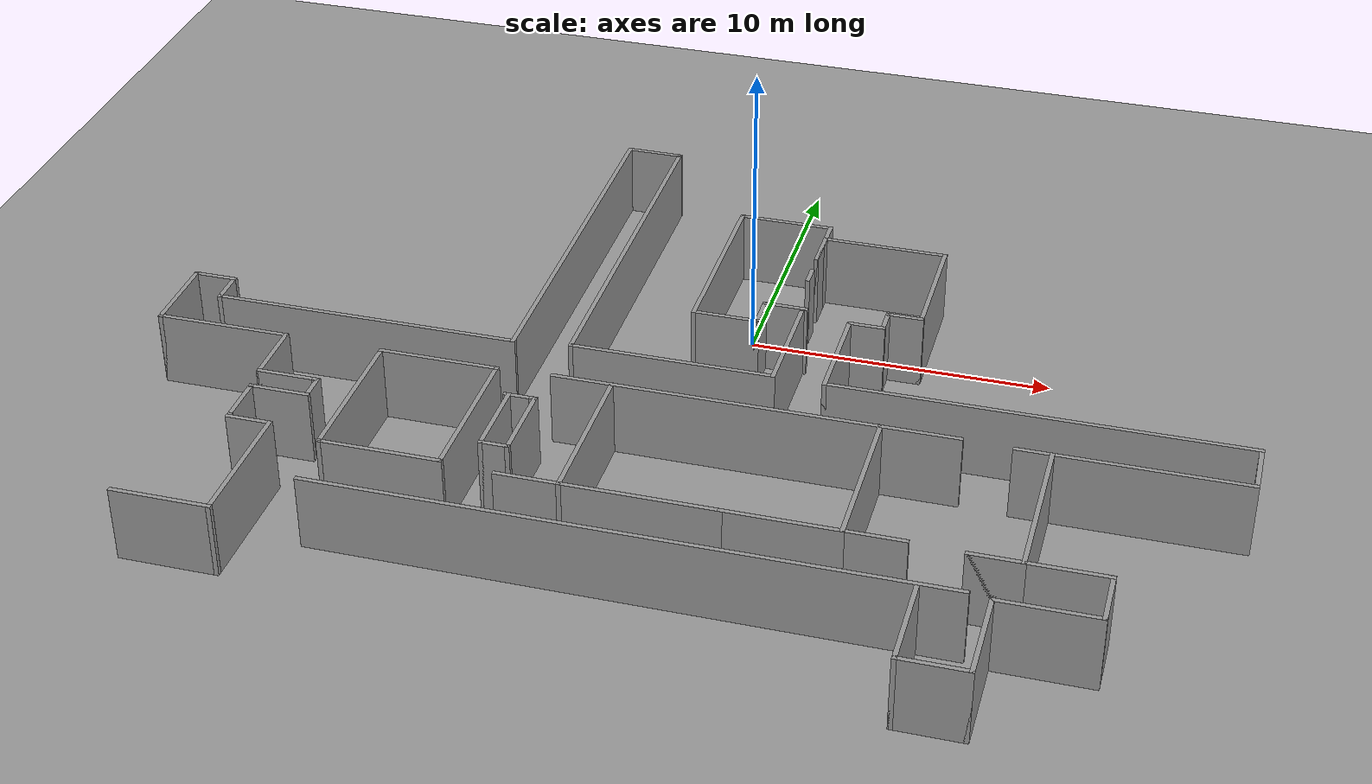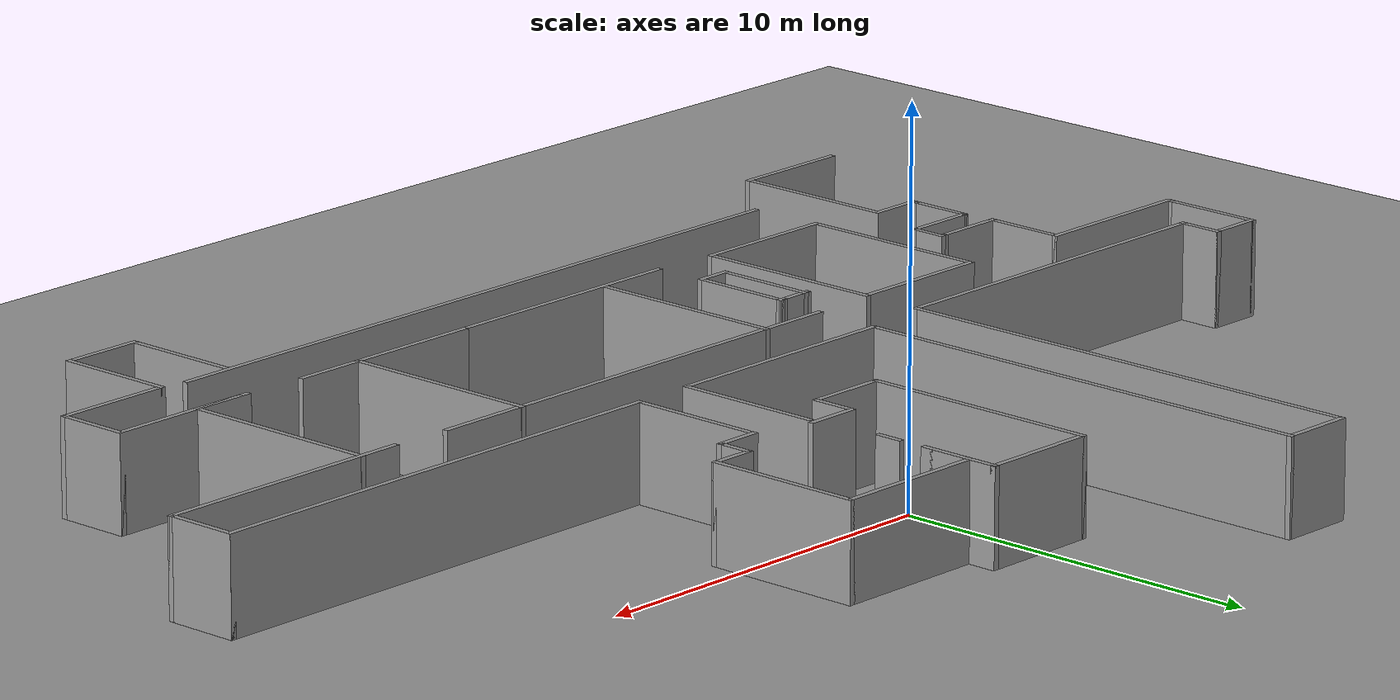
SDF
<sdf version="1.6">
 <world name="default">
  <light name="sun" type="directional">
   <pose>0 0 10 0 -0 0</pose>
   <diffuse>0.8 0.8 0.8 1</diffuse>
   <specular>0.2 0.2 0.2 1</specular>
   <attenuation>
    <range>1000</range>
    <constant>0.9</constant>
    <linear>0.01</linear>
    <quadratic>0.001</quadratic>
   </attenuation>
   <direction>0.5 0.1 -0.9</direction>
  </light>
  <scene><ambient>0.4 0.4 0.4 1</ambient><background>0.7 0.7 0.7 1</background><shadows>1</shadows></scene>
  <physics name="default_physics" default="0" type="ode">
   <max_step_size>0.01</max_step_size>
   <real_time_factor>1</real_time_factor>
   <real_time_update_rate>100</real_time_update_rate>
  </physics>
  <model name="ground_plane_0">
   <static>1</static>
   <link name="link">
    <collision name="collision">
     <geometry><plane><normal>0 0 1</normal><size>100 100</size></plane></geometry>
     <surface><friction><ode><mu>100</mu><mu2>50</mu2></ode></friction></surface>
    </collision>
    <visual name="visual">
     <cast_shadows>0</cast_shadows>
     <geometry><plane><normal>0 0 1</normal><size>100 100</size></plane></geometry>
     <material>
      <script><uri>file://media/materials/scripts/gazebo.material</uri><name>Gazebo/Grey</name></script>
     </material>
    </visual>
    <velocity_decay><linear>0</linear><angular>0</angular></velocity_decay>
   </link>
   <pose>0.497681 0 0 0 -0 0</pose>
  </model>
  <gravity>0 0 -9.8</gravity>
  <magnetic_field>6e-06 2.3e-05 -4.2e-05</magnetic_field>
  <atmosphere type="adiabatic"/>
  <spherical_coordinates>
   <surface_model>EARTH_WGS84</surface_model>
   <latitude_deg>0</latitude_deg>
   <longitude_deg>0</longitude_deg>
   <elevation>0</elevation>
   <heading_deg>0</heading_deg>
  </spherical_coordinates>
  <model name="Halligan_0">
   <pose>-0.504402 -4.89415 0 0 -0 0</pose>
   <link name="Wall_100">
    <collision name="Wall_100_Collision">
     <geometry><box><size>3.75 0.15 2.5</size></box></geometry>
     <pose>0 0 1.25 0 -0 0</pose>
    </collision>
    <visual name="Wall_100_Visual">
     <pose>0 0 1.25 0 -0 0</pose>
     <geometry><box><size>3.75 0.15 2.5</size></box></geometry>
     <material>
      <script><uri>file://media/materials/scripts/gazebo.material</uri><name>Gazebo/Grey</name></script>
      <ambient>1 1 1 1</ambient>
     </material>
     <meta><layer>0</layer></meta>
    </visual>
    <pose>4.42767 -7.46899 0 0 -0 3.14159</pose>
   </link>
   <link name="Wall_101">
    <collision name="Wall_101_Collision">
     <geometry><box><size>7 0.15 2.5</size></box></geometry>
     <pose>0 0 1.25 0 -0 0</pose>
    </collision>
    <visual name="Wall_101_Visual">
     <pose>0 0 1.25 0 -0 0</pose>
     <geometry><box><size>7 0.15 2.5</size></box></geometry>
     <material>
      <script><uri>file://media/materials/scripts/gazebo.material</uri><name>Gazebo/Grey</name></script>
      <ambient>1 1 1 1</ambient>
     </material>
     <meta><layer>0</layer></meta>
    </visual>
    <pose>-0.797325 -7.46899 0 0 -0 3.14159</pose>
   </link>
   <link name="Wall_103">
    <collision name="Wall_103_Collision">
     <geometry><box><size>5.5 0.15 2.5</size></box></geometry>
     <pose>0 0 1.25 0 -0 0</pose>
    </collision>
    <visual name="Wall_103_Visual">
     <pose>0 0 1.25 0 -0 0</pose>
     <geometry><box><size>5.5 0.15 2.5</size></box></geometry>
     <material>
      <script><uri>file://media/materials/scripts/gazebo.material</uri><name>Gazebo/Grey</name></script>
      <ambient>1 1 1 1</ambient>
     </material>
     <meta><layer>0</layer></meta>
    </visual>
    <pose>-2.25232 -4.79399 0 0 0 -1.5708</pose>
   </link>
   <link name="Wall_105">
    <collision name="Wall_105_Collision">
     <geometry><box><size>2 0.15 2.5</size></box></geometry>
     <pose>0 0 1.25 0 -0 0</pose>
    </collision>
    <visual name="Wall_105_Visual">
     <pose>0 0 1.25 0 -0 0</pose>
     <geometry><box><size>2 0.15 2.5</size></box></geometry>
     <material>
      <script><uri>file://media/materials/scripts/gazebo.material</uri><name>Gazebo/Grey</name></script>
      <ambient>1 1 1 1</ambient>
     </material>
     <meta><layer>0</layer></meta>
    </visual>
    <pose>7.15268 -7.46899 0 0 -0 0</pose>
   </link>
   <link name="Wall_107">
    <collision name="Wall_107_Collision">
     <geometry><box><size>5.5 0.15 2.5</size></box></geometry>
     <pose>0 0 1.25 0 -0 0</pose>
    </collision>
    <visual name="Wall_107_Visual">
     <pose>0 0 1.25 0 -0 0</pose>
     <geometry><box><size>5.5 0.15 2.5</size></box></geometry>
     <material>
      <script><uri>file://media/materials/scripts/gazebo.material</uri><name>Gazebo/Grey</name></script>
      <ambient>1 1 1 1</ambient>
     </material>
     <meta><layer>0</layer></meta>
    </visual>
    <pose>11.4477 -4.87399 0 0 0 -1.5708</pose>
   </link>
   <link name="Wall_108">
    <collision name="Wall_108_Collision">
     <geometry><box><size>1.75 0.15 2.5</size></box></geometry>
     <pose>0 0 1.25 0 -0 0</pose>
    </collision>
    <visual name="Wall_108_Visual">
     <pose>0 0 1.25 0 -0 0</pose>
     <geometry><box><size>1.75 0.15 2.5</size></box></geometry>
     <material>
      <script><uri>file://media/materials/scripts/gazebo.material</uri><name>Gazebo/Grey</name></script>
      <ambient>1 1 1 1</ambient>
     </material>
     <meta><layer>0</layer></meta>
    </visual>
    <pose>10.6477 -7.54899 0 0 -0 3.14159</pose>
   </link>
   <link name="Wall_109">
    <collision name="Wall_109_Collision">
     <geometry><box><size>4.25 0.15 2.5</size></box></geometry>
     <pose>0 0 1.25 0 -0 0</pose>
    </collision>
    <visual name="Wall_109_Visual">
     <pose>0 0 1.25 0 -0 0</pose>
     <geometry><box><size>4.25 0.15 2.5</size></box></geometry>
     <material>
      <script><uri>file://media/materials/scripts/gazebo.material</uri><name>Gazebo/Grey</name></script>
      <ambient>1 1 1 1</ambient>
     </material>
     <meta><layer>0</layer></meta>
    </visual>
    <pose>11.8977 -7.54899 0 0 -0 0</pose>
   </link>
   <link name="Wall_110">
    <collision name="Wall_110_Collision">
     <geometry><box><size>2 0.15 2.5</size></box></geometry>
     <pose>0 0 1.25 0 -0 0</pose>
    </collision>
    <visual name="Wall_110_Visual">
     <pose>0 0 1.25 0 -0 0</pose>
     <geometry><box><size>2 0.15 2.5</size></box></geometry>
     <material>
      <script><uri>file://media/materials/scripts/gazebo.material</uri><name>Gazebo/Grey</name></script>
      <ambient>1 1 1 1</ambient>
     </material>
     <meta><layer>0</layer></meta>
    </visual>
    <pose>13.9477 -8.47399 0 0 0 -1.5708</pose>
   </link>
   <link name="Wall_111">
    <collision name="Wall_111_Collision">
     <geometry><box><size>3.25 0.15 2.5</size></box></geometry>
     <pose>0 0 1.25 0 -0 0</pose>
    </collision>
    <visual name="Wall_111_Visual">
     <pose>0 0 1.25 0 -0 0</pose>
     <geometry><box><size>3.25 0.15 2.5</size></box></geometry>
     <material>
      <script><uri>file://media/materials/scripts/gazebo.material</uri><name>Gazebo/Grey</name></script>
      <ambient>1 1 1 1</ambient>
     </material>
     <meta><layer>0</layer></meta>
    </visual>
    <pose>12.3977 -9.39899 0 0 -0 3.14159</pose>
   </link>
   <link name="Wall_113">
    <collision name="Wall_113_Collision">
     <geometry><box><size>20 0.15 2.5</size></box></geometry>
     <pose>0 0 1.25 0 -0 0</pose>
    </collision>
    <visual name="Wall_113_Visual">
     <pose>0 0 1.25 0 -0 0</pose>
     <geometry><box><size>20 0.15 2.5</size></box></geometry>
     <material>
      <script><uri>file://media/materials/scripts/gazebo.material</uri><name>Gazebo/Grey</name></script>
      <ambient>1 1 1 1</ambient>
     </material>
     <meta><layer>0</layer></meta>
    </visual>
    <pose>0.202675 -9.25899 0 0 -0 3.14159</pose>
   </link>
   <link name="Wall_115">
    <collision name="Wall_115_Collision">
     <geometry><box><size>1.25 0.15 2.5</size></box></geometry>
     <pose>0 0 1.25 0 -0 0</pose>
    </collision>
    <visual name="Wall_115_Visual">
     <pose>0 0 1.25 0 -0 0</pose>
     <geometry><box><size>1.25 0.15 2.5</size></box></geometry>
     <material>
      <script><uri>file://media/materials/scripts/gazebo.material</uri><name>Gazebo/Grey</name></script>
      <ambient>1 1 1 1</ambient>
     </material>
     <meta><layer>0</layer></meta>
    </visual>
    <pose>1.19553 3.14698 0 0 -0 1.5708</pose>
   </link>
   <link name="Wall_116">
    <collision name="Wall_116_Collision">
     <geometry><box><size>1.5 0.15 2.5</size></box></geometry>
     <pose>0 0 1.25 0 -0 0</pose>
    </collision>
    <visual name="Wall_116_Visual">
     <pose>0 0 1.25 0 -0 0</pose>
     <geometry><box><size>1.5 0.15 2.5</size></box></geometry>
     <material>
      <script><uri>file://media/materials/scripts/gazebo.material</uri><name>Gazebo/Grey</name></script>
      <ambient>1 1 1 1</ambient>
     </material>
     <meta><layer>0</layer></meta>
    </visual>
    <pose>1.87053 3.69698 0 0 -0 0</pose>
   </link>
   <link name="Wall_118">
    <collision name="Wall_118_Collision">
     <geometry><box><size>0.25 0.15 2.5</size></box></geometry>
     <pose>0 0 1.25 0 -0 0</pose>
    </collision>
    <visual name="Wall_118_Visual">
     <pose>0 0 1.25 0 -0 0</pose>
     <geometry><box><size>0.25 0.15 2.5</size></box></geometry>
     <material>
      <script><uri>file://media/materials/scripts/gazebo.material</uri><name>Gazebo/Grey</name></script>
      <ambient>1 1 1 1</ambient>
     </material>
     <meta><layer>0</layer></meta>
    </visual>
    <pose>-12.9955 -6.80101 0 0 0 -1.5708</pose>
   </link>
   <link name="Wall_119">
    <collision name="Wall_119_Collision">
     <geometry><box><size>1.5 0.15 2.5</size></box></geometry>
     <pose>0 0 1.25 0 -0 0</pose>
    </collision>
    <visual name="Wall_119_Visual">
     <pose>0 0 1.25 0 -0 0</pose>
     <geometry><box><size>1.5 0.15 2.5</size></box></geometry>
     <material>
      <script><uri>file://media/materials/scripts/gazebo.material</uri><name>Gazebo/Grey</name></script>
      <ambient>1 1 1 1</ambient>
     </material>
     <meta><layer>0</layer></meta>
    </visual>
    <pose>-12.3205 -6.85101 0 0 -0 0</pose>
   </link>
   <link name="Wall_120">
    <collision name="Wall_120_Collision">
     <geometry><box><size>4.5 0.15 2.5</size></box></geometry>
     <pose>0 0 1.25 0 -0 0</pose>
    </collision>
    <visual name="Wall_120_Visual">
     <pose>0 0 1.25 0 -0 0</pose>
     <geometry><box><size>4.5 0.15 2.5</size></box></geometry>
     <material>
      <script><uri>file://media/materials/scripts/gazebo.material</uri><name>Gazebo/Grey</name></script>
      <ambient>1 1 1 1</ambient>
     </material>
     <meta><layer>0</layer></meta>
    </visual>
    <pose>-11.6455 -9.02601 0 0 0 -1.5708</pose>
   </link>
   <link name="Wall_121">
    <collision name="Wall_121_Collision">
     <geometry><box><size>3.25 0.15 2.5</size></box></geometry>
     <pose>0 0 1.25 0 -0 0</pose>
    </collision>
    <visual name="Wall_121_Visual">
     <pose>0 0 1.25 0 -0 0</pose>
     <geometry><box><size>3.25 0.15 2.5</size></box></geometry>
     <material>
      <script><uri>file://media/materials/scripts/gazebo.material</uri><name>Gazebo/Grey</name></script>
      <ambient>1 1 1 1</ambient>
     </material>
     <meta><layer>0</layer></meta>
    </visual>
    <pose>-13.1955 -11.201 0 0 -0 3.14159</pose>
   </link>
   <link name="Wall_123">
    <collision name="Wall_123_Collision">
     <geometry><box><size>3.25 0.15 2.5</size></box></geometry>
     <pose>0 0 1.25 0 -0 0</pose>
    </collision>
    <visual name="Wall_123_Visual">
     <pose>0 0 1.25 0 -0 0</pose>
     <geometry><box><size>3.25 0.15 2.5</size></box></geometry>
     <material>
      <script><uri>file://media/materials/scripts/gazebo.material</uri><name>Gazebo/Grey</name></script>
      <ambient>1 1 1 1</ambient>
     </material>
     <meta><layer>0</layer></meta>
    </visual>
    <pose>10.8477 -10.949 0 0 0 -1.5708</pose>
   </link>
   <link name="Wall_124">
    <collision name="Wall_124_Collision">
     <geometry><box><size>2.25 0.15 2.5</size></box></geometry>
     <pose>0 0 1.25 0 -0 0</pose>
    </collision>
    <visual name="Wall_124_Visual">
     <pose>0 0 1.25 0 -0 0</pose>
     <geometry><box><size>2.25 0.15 2.5</size></box></geometry>
     <material>
      <script><uri>file://media/materials/scripts/gazebo.material</uri><name>Gazebo/Grey</name></script>
      <ambient>1 1 1 1</ambient>
     </material>
     <meta><layer>0</layer></meta>
    </visual>
    <pose>9.79767 -12.499 0 0 -0 3.14159</pose>
   </link>
   <link name="Wall_125">
    <collision name="Wall_125_Collision">
     <geometry><box><size>3.25 0.15 2.5</size></box></geometry>
     <pose>0 0 1.25 0 -0 0</pose>
    </collision>
    <visual name="Wall_125_Visual">
     <pose>0 0 1.25 0 -0 0</pose>
     <geometry><box><size>3.25 0.15 2.5</size></box></geometry>
     <material>
      <script><uri>file://media/materials/scripts/gazebo.material</uri><name>Gazebo/Grey</name></script>
      <ambient>1 1 1 1</ambient>
     </material>
     <meta><layer>0</layer></meta>
    </visual>
    <pose>8.74767 -10.949 0 0 -0 1.5708</pose>
   </link>
   <link name="Wall_127">
    <collision name="Wall_127_Collision">
     <geometry><box><size>0.75 0.15 2.5</size></box></geometry>
     <pose>0 0 1.25 0 -0 0</pose>
    </collision>
    <visual name="Wall_127_Visual">
     <pose>0 0 1.25 0 -0 0</pose>
     <geometry><box><size>0.75 0.15 2.5</size></box></geometry>
     <material>
      <script><uri>file://media/materials/scripts/gazebo.material</uri><name>Gazebo/Grey</name></script>
      <ambient>1 1 1 1</ambient>
     </material>
     <meta><layer>0</layer></meta>
    </visual>
    <pose>2.21436 5.77412 0 0 -0 1.5708</pose>
   </link>
   <link name="Wall_49">
    <collision name="Wall_49_Collision">
     <geometry><box><size>2.25 0.15 2.5</size></box></geometry>
     <pose>0 0 1.25 0 -0 0</pose>
    </collision>
    <visual name="Wall_49_Visual">
     <pose>0 0 1.25 0 -0 0</pose>
     <geometry><box><size>2.25 0.15 2.5</size></box></geometry>
     <material>
      <script><uri>file://media/materials/scripts/gazebo.material</uri><name>Gazebo/Grey</name></script>
      <ambient>1 1 1 1</ambient>
     </material>
     <meta><layer>0</layer></meta>
    </visual>
    <pose>0.14553 2.59698 0 0 -0 3.14159</pose>
   </link>
   <link name="Wall_50">
    <collision name="Wall_50_Collision">
     <geometry><box><size>6.5 0.15 2.5</size></box></geometry>
     <pose>0 0 1.25 0 -0 0</pose>
    </collision>
    <visual name="Wall_50_Visual">
     <pose>0 0 1.25 0 -0 0</pose>
     <geometry><box><size>6.5 0.15 2.5</size></box></geometry>
     <material>
      <script><uri>file://media/materials/scripts/gazebo.material</uri><name>Gazebo/Grey</name></script>
      <ambient>1 1 1 1</ambient>
     </material>
     <meta><layer>0</layer></meta>
    </visual>
    <pose>-0.90447 5.77198 0 0 -0 1.5708</pose>
   </link>
   <link name="Wall_51">
    <collision name="Wall_51_Collision">
     <geometry><box><size>3.25 0.15 2.5</size></box></geometry>
     <pose>0 0 1.25 0 -0 0</pose>
    </collision>
    <visual name="Wall_51_Visual">
     <pose>0 0 1.25 0 -0 0</pose>
     <geometry><box><size>3.25 0.15 2.5</size></box></geometry>
     <material>
      <script><uri>file://media/materials/scripts/gazebo.material</uri><name>Gazebo/Grey</name></script>
      <ambient>1 1 1 1</ambient>
     </material>
     <meta><layer>0</layer></meta>
    </visual>
    <pose>0.64553 8.94698 0 0 -0 0</pose>
   </link>
   <link name="Wall_52">
    <collision name="Wall_52_Collision">
     <geometry><box><size>2.25 0.15 2.5</size></box></geometry>
     <pose>0 0 1.25 0 -0 0</pose>
    </collision>
    <visual name="Wall_52_Visual">
     <pose>0 0 1.25 0 -0 0</pose>
     <geometry><box><size>2.25 0.15 2.5</size></box></geometry>
     <material>
      <script><uri>file://media/materials/scripts/gazebo.material</uri><name>Gazebo/Grey</name></script>
      <ambient>1 1 1 1</ambient>
     </material>
     <meta><layer>0</layer></meta>
    </visual>
    <pose>2.19553 7.89698 0 0 0 -1.5708</pose>
   </link>
   <link name="Wall_53">
    <collision name="Wall_53_Collision">
     <geometry><box><size>1.5 0.15 2.5</size></box></geometry>
     <pose>0 0 1.25 0 -0 0</pose>
    </collision>
    <visual name="Wall_53_Visual">
     <pose>0 0 1.25 0 -0 0</pose>
     <geometry><box><size>1.5 0.15 2.5</size></box></geometry>
     <material>
      <script><uri>file://media/materials/scripts/gazebo.material</uri><name>Gazebo/Grey</name></script>
      <ambient>1 1 1 1</ambient>
     </material>
     <meta><layer>0</layer></meta>
    </visual>
    <pose>2.19553 7.52198 0 0 -0 1.5708</pose>
   </link>
   <link name="Wall_54">
    <collision name="Wall_54_Collision">
     <geometry><box><size>4.25 0.15 2.5</size></box></geometry>
     <pose>0 0 1.25 0 -0 0</pose>
    </collision>
    <visual name="Wall_54_Visual">
     <pose>0 0 1.25 0 -0 0</pose>
     <geometry><box><size>4.25 0.15 2.5</size></box></geometry>
     <material>
      <script><uri>file://media/materials/scripts/gazebo.material</uri><name>Gazebo/Grey</name></script>
      <ambient>1 1 1 1</ambient>
     </material>
     <meta><layer>0</layer></meta>
    </visual>
    <pose>4.24553 8.19698 0 0 -0 0</pose>
   </link>
   <link name="Wall_55">
    <collision name="Wall_55_Collision">
     <geometry><box><size>4.25 0.15 2.5</size></box></geometry>
     <pose>0 0 1.25 0 -0 0</pose>
    </collision>
    <visual name="Wall_55_Visual">
     <pose>0 0 1.25 0 -0 0</pose>
     <geometry><box><size>4.25 0.15 2.5</size></box></geometry>
     <material>
      <script><uri>file://media/materials/scripts/gazebo.material</uri><name>Gazebo/Grey</name></script>
      <ambient>1 1 1 1</ambient>
     </material>
     <meta><layer>0</layer></meta>
    </visual>
    <pose>6.29553 6.14698 0 0 0 -1.5708</pose>
   </link>
   <link name="Wall_56">
    <collision name="Wall_56_Collision">
     <geometry><box><size>1.25 0.15 2.5</size></box></geometry>
     <pose>0 0 1.25 0 -0 0</pose>
    </collision>
    <visual name="Wall_56_Visual">
     <pose>0 0 1.25 0 -0 0</pose>
     <geometry><box><size>1.25 0.15 2.5</size></box></geometry>
     <material>
      <script><uri>file://media/materials/scripts/gazebo.material</uri><name>Gazebo/Grey</name></script>
      <ambient>1 1 1 1</ambient>
     </material>
     <meta><layer>0</layer></meta>
    </visual>
    <pose>5.74553 4.09698 0 0 -0 3.14159</pose>
   </link>
   <link name="Wall_57">
    <collision name="Wall_57_Collision">
     <geometry><box><size>1 0.15 2.5</size></box></geometry>
     <pose>0 0 1.25 0 -0 0</pose>
    </collision>
    <visual name="Wall_57_Visual">
     <pose>0 0 1.25 0 -0 0</pose>
     <geometry><box><size>1 0.15 2.5</size></box></geometry>
     <material>
      <script><uri>file://media/materials/scripts/gazebo.material</uri><name>Gazebo/Grey</name></script>
      <ambient>1 1 1 1</ambient>
     </material>
     <meta><layer>0</layer></meta>
    </visual>
    <pose>5.19553 3.67198 0 0 0 -1.5708</pose>
   </link>
   <link name="Wall_58">
    <collision name="Wall_58_Collision">
     <geometry><box><size>1.25 0.15 2.5</size></box></geometry>
     <pose>0 0 1.25 0 -0 0</pose>
    </collision>
    <visual name="Wall_58_Visual">
     <pose>0 0 1.25 0 -0 0</pose>
     <geometry><box><size>1.25 0.15 2.5</size></box></geometry>
     <material>
      <script><uri>file://media/materials/scripts/gazebo.material</uri><name>Gazebo/Grey</name></script>
      <ambient>1 1 1 1</ambient>
     </material>
     <meta><layer>0</layer></meta>
    </visual>
    <pose>4.64553 3.24698 0 0 -0 3.14159</pose>
   </link>
   <link name="Wall_59">
    <collision name="Wall_59_Collision">
     <geometry><box><size>3.75 0.15 2.5</size></box></geometry>
     <pose>0 0 1.25 0 -0 0</pose>
    </collision>
    <visual name="Wall_59_Visual">
     <pose>0 0 1.25 0 -0 0</pose>
     <geometry><box><size>3.75 0.15 2.5</size></box></geometry>
     <material>
      <script><uri>file://media/materials/scripts/gazebo.material</uri><name>Gazebo/Grey</name></script>
      <ambient>1 1 1 1</ambient>
     </material>
     <meta><layer>0</layer></meta>
    </visual>
    <pose>4.09553 1.44698 0 0 0 -1.5708</pose>
   </link>
   <link name="Wall_60">
    <collision name="Wall_60_Collision">
     <geometry><box><size>13.5 0.15 2.5</size></box></geometry>
     <pose>0 0 1.25 0 -0 0</pose>
    </collision>
    <visual name="Wall_60_Visual">
     <pose>0 0 1.25 0 -0 0</pose>
     <geometry><box><size>13.5 0.15 2.5</size></box></geometry>
     <material>
      <script><uri>file://media/materials/scripts/gazebo.material</uri><name>Gazebo/Grey</name></script>
      <ambient>1 1 1 1</ambient>
     </material>
     <meta><layer>0</layer></meta>
    </visual>
    <pose>10.7705 -0.353021 0 0 -0 0</pose>
   </link>
   <link name="Wall_61">
    <collision name="Wall_61_Collision">
     <geometry><box><size>2 0.15 2.5</size></box></geometry>
     <pose>0 0 1.25 0 -0 0</pose>
    </collision>
    <visual name="Wall_61_Visual">
     <pose>0 0 1.25 0 -0 0</pose>
     <geometry><box><size>2 0.15 2.5</size></box></geometry>
     <material>
      <script><uri>file://media/materials/scripts/gazebo.material</uri><name>Gazebo/Grey</name></script>
      <ambient>1 1 1 1</ambient>
     </material>
     <meta><layer>0</layer></meta>
    </visual>
    <pose>17.4455 -1.27802 0 0 0 -1.5708</pose>
   </link>
   <link name="Wall_62">
    <collision name="Wall_62_Collision">
     <geometry><box><size>7.25 0.15 2.5</size></box></geometry>
     <pose>0 0 1.25 0 -0 0</pose>
    </collision>
    <visual name="Wall_62_Visual">
     <pose>0 0 1.25 0 -0 0</pose>
     <geometry><box><size>7.25 0.15 2.5</size></box></geometry>
     <material>
      <script><uri>file://media/materials/scripts/gazebo.material</uri><name>Gazebo/Grey</name></script>
      <ambient>1 1 1 1</ambient>
     </material>
     <meta><layer>0</layer></meta>
    </visual>
    <pose>13.8955 -2.20302 0 0 -0 3.14159</pose>
   </link>
   <link name="Wall_64">
    <collision name="Wall_64_Collision">
     <geometry><box><size>13 0.15 2.5</size></box></geometry>
     <pose>0 0 1.25 0 -0 0</pose>
    </collision>
    <visual name="Wall_64_Visual">
     <pose>0 0 1.25 0 -0 0</pose>
     <geometry><box><size>13 0.15 2.5</size></box></geometry>
     <material>
      <script><uri>file://media/materials/scripts/gazebo.material</uri><name>Gazebo/Grey</name></script>
      <ambient>1 1 1 1</ambient>
     </material>
     <meta><layer>0</layer></meta>
    </visual>
    <pose>2.25963 -2.13105 0 0 -0 3.14159</pose>
   </link>
   <link name="Wall_67">
    <collision name="Wall_67_Collision">
     <geometry><box><size>4 0.15 2.5</size></box></geometry>
     <pose>0 0 1.25 0 -0 0</pose>
    </collision>
    <visual name="Wall_67_Visual">
     <pose>0 0 1.25 0 -0 0</pose>
     <geometry><box><size>4 0.15 2.5</size></box></geometry>
     <material>
      <script><uri>file://media/materials/scripts/gazebo.material</uri><name>Gazebo/Grey</name></script>
      <ambient>1 1 1 1</ambient>
     </material>
     <meta><layer>0</layer></meta>
    </visual>
    <pose>2.45447 1.57399 0 0 -0 1.5708</pose>
   </link>
   <link name="Wall_69">
    <collision name="Wall_69_Collision">
     <geometry><box><size>6.75 0.15 2.5</size></box></geometry>
     <pose>0 0 1.25 0 -0 0</pose>
    </collision>
    <visual name="Wall_69_Visual">
     <pose>0 0 1.25 0 -0 0</pose>
     <geometry><box><size>6.75 0.15 2.5</size></box></geometry>
     <material>
      <script><uri>file://media/materials/scripts/gazebo.material</uri><name>Gazebo/Grey</name></script>
      <ambient>1 1 1 1</ambient>
     </material>
     <meta><layer>0</layer></meta>
    </visual>
    <pose>-0.845529 -0.351007 0 0 -0 3.14159</pose>
   </link>
   <link name="Wall_70">
    <collision name="Wall_70_Collision">
     <geometry><box><size>13 0.15 2.5</size></box></geometry>
     <pose>0 0 1.25 0 -0 0</pose>
    </collision>
    <visual name="Wall_70_Visual">
     <pose>0 0 1.25 0 -0 0</pose>
     <geometry><box><size>13 0.15 2.5</size></box></geometry>
     <material>
      <script><uri>file://media/materials/scripts/gazebo.material</uri><name>Gazebo/Grey</name></script>
      <ambient>1 1 1 1</ambient>
     </material>
     <meta><layer>0</layer></meta>
    </visual>
    <pose>-4.14553 6.07399 0 0 -0 1.5708</pose>
   </link>
   <link name="Wall_71">
    <collision name="Wall_71_Collision">
     <geometry><box><size>2 0.15 2.5</size></box></geometry>
     <pose>0 0 1.25 0 -0 0</pose>
    </collision>
    <visual name="Wall_71_Visual">
     <pose>0 0 1.25 0 -0 0</pose>
     <geometry><box><size>2 0.15 2.5</size></box></geometry>
     <material>
      <script><uri>file://media/materials/scripts/gazebo.material</uri><name>Gazebo/Grey</name></script>
      <ambient>1 1 1 1</ambient>
     </material>
     <meta><layer>0</layer></meta>
    </visual>
    <pose>-5.07053 12.499 0 0 -0 3.14159</pose>
   </link>
   <link name="Wall_72">
    <collision name="Wall_72_Collision">
     <geometry><box><size>13.25 0.15 2.5</size></box></geometry>
     <pose>0 0 1.25 0 -0 0</pose>
    </collision>
    <visual name="Wall_72_Visual">
     <pose>0 0 1.25 0 -0 0</pose>
     <geometry><box><size>13.25 0.15 2.5</size></box></geometry>
     <material>
      <script><uri>file://media/materials/scripts/gazebo.material</uri><name>Gazebo/Grey</name></script>
      <ambient>1 1 1 1</ambient>
     </material>
     <meta><layer>0</layer></meta>
    </visual>
    <pose>-5.99553 5.94899 0 0 0 -1.5708</pose>
   </link>
   <link name="Wall_73">
    <collision name="Wall_73_Collision">
     <geometry><box><size>10.25 0.15 2.5</size></box></geometry>
     <pose>0 0 1.25 0 -0 0</pose>
    </collision>
    <visual name="Wall_73_Visual">
     <pose>0 0 1.25 0 -0 0</pose>
     <geometry><box><size>10.25 0.15 2.5</size></box></geometry>
     <material>
      <script><uri>file://media/materials/scripts/gazebo.material</uri><name>Gazebo/Grey</name></script>
      <ambient>1 1 1 1</ambient>
     </material>
     <meta><layer>0</layer></meta>
    </visual>
    <pose>-11.0455 -0.601007 0 0 -0 3.14159</pose>
   </link>
   <link name="Wall_76">
    <collision name="Wall_76_Collision">
     <geometry><box><size>1.25 0.15 2.5</size></box></geometry>
     <pose>0 0 1.25 0 -0 0</pose>
    </collision>
    <visual name="Wall_76_Visual">
     <pose>0 0 1.25 0 -0 0</pose>
     <geometry><box><size>1.25 0.15 2.5</size></box></geometry>
     <material>
      <script><uri>file://media/materials/scripts/gazebo.material</uri><name>Gazebo/Grey</name></script>
      <ambient>1 1 1 1</ambient>
     </material>
     <meta><layer>0</layer></meta>
    </visual>
    <pose>-16.0955 -0.051006 0 0 -0 1.5708</pose>
   </link>
   <link name="Wall_77">
    <collision name="Wall_77_Collision">
     <geometry><box><size>1.5 0.15 2.5</size></box></geometry>
     <pose>0 0 1.25 0 -0 0</pose>
    </collision>
    <visual name="Wall_77_Visual">
     <pose>0 0 1.25 0 -0 0</pose>
     <geometry><box><size>1.5 0.15 2.5</size></box></geometry>
     <material>
      <script><uri>file://media/materials/scripts/gazebo.material</uri><name>Gazebo/Grey</name></script>
      <ambient>1 1 1 1</ambient>
     </material>
     <meta><layer>0</layer></meta>
    </visual>
    <pose>-16.7705 0.498993 0 0 -0 3.14159</pose>
   </link>
   <link name="Wall_78">
    <collision name="Wall_78_Collision">
     <geometry><box><size>2.75 0.15 2.5</size></box></geometry>
     <pose>0 0 1.25 0 -0 0</pose>
    </collision>
    <visual name="Wall_78_Visual">
     <pose>0 0 1.25 0 -0 0</pose>
     <geometry><box><size>2.75 0.15 2.5</size></box></geometry>
     <material>
      <script><uri>file://media/materials/scripts/gazebo.material</uri><name>Gazebo/Grey</name></script>
      <ambient>1 1 1 1</ambient>
     </material>
     <meta><layer>0</layer></meta>
    </visual>
    <pose>-17.4455 -0.801006 0 0 0 -1.5708</pose>
   </link>
   <link name="Wall_79">
    <collision name="Wall_79_Collision">
     <geometry><box><size>0.25 0.15 2.5</size></box></geometry>
     <pose>0 0 1.25 0 -0 0</pose>
    </collision>
    <visual name="Wall_79_Visual">
     <pose>0 0 1.25 0 -0 0</pose>
     <geometry><box><size>0.25 0.15 2.5</size></box></geometry>
     <material>
      <script><uri>file://media/materials/scripts/gazebo.material</uri><name>Gazebo/Grey</name></script>
      <ambient>1 1 1 1</ambient>
     </material>
     <meta><layer>0</layer></meta>
    </visual>
    <pose>-17.4455 -2.15101 0 0 0 -1.5708</pose>
   </link>
   <link name="Wall_80">
    <collision name="Wall_80_Collision">
     <geometry><box><size>4.5 0.15 2.5</size></box></geometry>
     <pose>0 0 1.25 0 -0 0</pose>
    </collision>
    <visual name="Wall_80_Visual">
     <pose>0 0 1.25 0 -0 0</pose>
     <geometry><box><size>4.5 0.15 2.5</size></box></geometry>
     <material>
      <script><uri>file://media/materials/scripts/gazebo.material</uri><name>Gazebo/Grey</name></script>
      <ambient>1 1 1 1</ambient>
     </material>
     <meta><layer>0</layer></meta>
    </visual>
    <pose>-15.2705 -2.20101 0 0 -0 0</pose>
   </link>
   <link name="Wall_81">
    <collision name="Wall_81_Collision">
     <geometry><box><size>2.25 0.15 2.5</size></box></geometry>
     <pose>0 0 1.25 0 -0 0</pose>
    </collision>
    <visual name="Wall_81_Visual">
     <pose>0 0 1.25 0 -0 0</pose>
     <geometry><box><size>2.25 0.15 2.5</size></box></geometry>
     <material>
      <script><uri>file://media/materials/scripts/gazebo.material</uri><name>Gazebo/Grey</name></script>
      <ambient>1 1 1 1</ambient>
     </material>
     <meta><layer>0</layer></meta>
    </visual>
    <pose>-13.0955 -3.25101 0 0 0 -1.5708</pose>
   </link>
   <link name="Wall_82">
    <collision name="Wall_82_Collision">
     <geometry><box><size>2 0.15 2.5</size></box></geometry>
     <pose>0 0 1.25 0 -0 0</pose>
    </collision>
    <visual name="Wall_82_Visual">
     <pose>0 0 1.25 0 -0 0</pose>
     <geometry><box><size>2 0.15 2.5</size></box></geometry>
     <material>
      <script><uri>file://media/materials/scripts/gazebo.material</uri><name>Gazebo/Grey</name></script>
      <ambient>1 1 1 1</ambient>
     </material>
     <meta><layer>0</layer></meta>
    </visual>
    <pose>-12.1705 -4.30101 0 0 -0 0</pose>
   </link>
   <link name="Wall_83">
    <collision name="Wall_83_Collision">
     <geometry><box><size>0.25 0.15 2.5</size></box></geometry>
     <pose>0 0 1.25 0 -0 0</pose>
    </collision>
    <visual name="Wall_83_Visual">
     <pose>0 0 1.25 0 -0 0</pose>
     <geometry><box><size>0.25 0.15 2.5</size></box></geometry>
     <material>
      <script><uri>file://media/materials/scripts/gazebo.material</uri><name>Gazebo/Grey</name></script>
      <ambient>1 1 1 1</ambient>
     </material>
     <meta><layer>0</layer></meta>
    </visual>
    <pose>-11.1955 -4.30101 0 0 -0 0</pose>
   </link>
   <link name="Wall_84">
    <collision name="Wall_84_Collision">
     <geometry><box><size>1 0.15 2.5</size></box></geometry>
     <pose>0 0 1.25 0 -0 0</pose>
    </collision>
    <visual name="Wall_84_Visual">
     <pose>0 0 1.25 0 -0 0</pose>
     <geometry><box><size>1 0.15 2.5</size></box></geometry>
     <material>
      <script><uri>file://media/materials/scripts/gazebo.material</uri><name>Gazebo/Grey</name></script>
      <ambient>1 1 1 1</ambient>
     </material>
     <meta><layer>0</layer></meta>
    </visual>
    <pose>-11.1455 -4.72601 0 0 0 -1.5708</pose>
   </link>
   <link name="Wall_85">
    <collision name="Wall_85_Collision">
     <geometry><box><size>2 0.15 2.5</size></box></geometry>
     <pose>0 0 1.25 0 -0 0</pose>
    </collision>
    <visual name="Wall_85_Visual">
     <pose>0 0 1.25 0 -0 0</pose>
     <geometry><box><size>2 0.15 2.5</size></box></geometry>
     <material>
      <script><uri>file://media/materials/scripts/gazebo.material</uri><name>Gazebo/Grey</name></script>
      <ambient>1 1 1 1</ambient>
     </material>
     <meta><layer>0</layer></meta>
    </visual>
    <pose>-12.0705 -5.15101 0 0 -0 3.14159</pose>
   </link>
   <link name="Wall_86">
    <collision name="Wall_86_Collision">
     <geometry><box><size>1.75 0.15 2.5</size></box></geometry>
     <pose>0 0 1.25 0 -0 0</pose>
    </collision>
    <visual name="Wall_86_Visual">
     <pose>0 0 1.25 0 -0 0</pose>
     <geometry><box><size>1.75 0.15 2.5</size></box></geometry>
     <material>
      <script><uri>file://media/materials/scripts/gazebo.material</uri><name>Gazebo/Grey</name></script>
      <ambient>1 1 1 1</ambient>
     </material>
     <meta><layer>0</layer></meta>
    </visual>
    <pose>-12.9955 -5.95101 0 0 0 -1.5708</pose>
   </link>
   <link name="Wall_88">
    <collision name="Wall_88_Collision">
     <geometry><box><size>5.25 0.15 2.5</size></box></geometry>
     <pose>0 0 1.25 0 -0 0</pose>
    </collision>
    <visual name="Wall_88_Visual">
     <pose>0 0 1.25 0 -0 0</pose>
     <geometry><box><size>5.25 0.15 2.5</size></box></geometry>
     <material>
      <script><uri>file://media/materials/scripts/gazebo.material</uri><name>Gazebo/Grey</name></script>
      <ambient>1 1 1 1</ambient>
     </material>
     <meta><layer>0</layer></meta>
    </visual>
    <pose>-5.99338 -4.77459 0 0 0 -1.5708</pose>
   </link>
   <link name="Wall_89">
    <collision name="Wall_89_Collision">
     <geometry><box><size>4 0.15 2.5</size></box></geometry>
     <pose>0 0 1.25 0 -0 0</pose>
    </collision>
    <visual name="Wall_89_Visual">
     <pose>0 0 1.25 0 -0 0</pose>
     <geometry><box><size>4 0.15 2.5</size></box></geometry>
     <material>
      <script><uri>file://media/materials/scripts/gazebo.material</uri><name>Gazebo/Grey</name></script>
      <ambient>1 1 1 1</ambient>
     </material>
     <meta><layer>0</layer></meta>
    </visual>
    <pose>-7.91838 -7.32459 0 0 -0 3.14159</pose>
   </link>
   <link name="Wall_90">
    <collision name="Wall_90_Collision">
     <geometry><box><size>5.25 0.15 2.5</size></box></geometry>
     <pose>0 0 1.25 0 -0 0</pose>
    </collision>
    <visual name="Wall_90_Visual">
     <pose>0 0 1.25 0 -0 0</pose>
     <geometry><box><size>5.25 0.15 2.5</size></box></geometry>
     <material>
      <script><uri>file://media/materials/scripts/gazebo.material</uri><name>Gazebo/Grey</name></script>
      <ambient>1 1 1 1</ambient>
     </material>
     <meta><layer>0</layer></meta>
    </visual>
    <pose>-9.84338 -4.77459 0 0 -0 1.5708</pose>
   </link>
   <link name="Wall_91">
    <collision name="Wall_91_Collision">
     <geometry><box><size>4 0.15 2.5</size></box></geometry>
     <pose>0 0 1.25 0 -0 0</pose>
    </collision>
    <visual name="Wall_91_Visual">
     <pose>0 0 1.25 0 -0 0</pose>
     <geometry><box><size>4 0.15 2.5</size></box></geometry>
     <material>
      <script><uri>file://media/materials/scripts/gazebo.material</uri><name>Gazebo/Grey</name></script>
      <ambient>1 1 1 1</ambient>
     </material>
     <meta><layer>0</layer></meta>
    </visual>
    <pose>-7.91838 -2.22459 0 0 -0 0</pose>
   </link>
   <link name="Wall_93">
    <collision name="Wall_93_Collision">
     <geometry><box><size>1 0.15 2.5</size></box></geometry>
     <pose>0 0 1.25 0 -0 0</pose>
    </collision>
    <visual name="Wall_93_Visual">
     <pose>0 0 1.25 0 -0 0</pose>
     <geometry><box><size>1 0.15 2.5</size></box></geometry>
     <material>
      <script><uri>file://media/materials/scripts/gazebo.material</uri><name>Gazebo/Grey</name></script>
      <ambient>1 1 1 1</ambient>
     </material>
     <meta><layer>0</layer></meta>
    </visual>
    <pose>-4.82733 -3.49899 0 0 -0 0</pose>
   </link>
   <link name="Wall_94">
    <collision name="Wall_94_Collision">
     <geometry><box><size>0.25 0.15 2.5</size></box></geometry>
     <pose>0 0 1.25 0 -0 0</pose>
    </collision>
    <visual name="Wall_94_Visual">
     <pose>0 0 1.25 0 -0 0</pose>
     <geometry><box><size>0.25 0.15 2.5</size></box></geometry>
     <material>
      <script><uri>file://media/materials/scripts/gazebo.material</uri><name>Gazebo/Grey</name></script>
      <ambient>1 1 1 1</ambient>
     </material>
     <meta><layer>0</layer></meta>
    </visual>
    <pose>-4.35232 -3.49899 0 0 -0 0</pose>
   </link>
   <link name="Wall_95">
    <collision name="Wall_95_Collision">
     <geometry><box><size>2.75 0.15 2.5</size></box></geometry>
     <pose>0 0 1.25 0 -0 0</pose>
    </collision>
    <visual name="Wall_95_Visual">
     <pose>0 0 1.25 0 -0 0</pose>
     <geometry><box><size>2.75 0.15 2.5</size></box></geometry>
     <material>
      <script><uri>file://media/materials/scripts/gazebo.material</uri><name>Gazebo/Grey</name></script>
      <ambient>1 1 1 1</ambient>
     </material>
     <meta><layer>0</layer></meta>
    </visual>
    <pose>-4.30232 -4.79899 0 0 0 -1.5708</pose>
   </link>
   <link name="Wall_96">
    <collision name="Wall_96_Collision">
     <geometry><box><size>1 0.15 2.5</size></box></geometry>
     <pose>0 0 1.25 0 -0 0</pose>
    </collision>
    <visual name="Wall_96_Visual">
     <pose>0 0 1.25 0 -0 0</pose>
     <geometry><box><size>1 0.15 2.5</size></box></geometry>
     <material>
      <script><uri>file://media/materials/scripts/gazebo.material</uri><name>Gazebo/Grey</name></script>
      <ambient>1 1 1 1</ambient>
     </material>
     <meta><layer>0</layer></meta>
    </visual>
    <pose>-4.72732 -6.09899 0 0 -0 3.14159</pose>
   </link>
   <link name="Wall_97">
    <collision name="Wall_97_Collision">
     <geometry><box><size>2.75 0.15 2.5</size></box></geometry>
     <pose>0 0 1.25 0 -0 0</pose>
    </collision>
    <visual name="Wall_97_Visual">
     <pose>0 0 1.25 0 -0 0</pose>
     <geometry><box><size>2.75 0.15 2.5</size></box></geometry>
     <material>
      <script><uri>file://media/materials/scripts/gazebo.material</uri><name>Gazebo/Grey</name></script>
      <ambient>1 1 1 1</ambient>
     </material>
     <meta><layer>0</layer></meta>
    </visual>
    <pose>-5.15233 -4.79899 0 0 -0 1.5708</pose>
   </link>
   <link name="Wall_99">
    <collision name="Wall_99_Collision">
     <geometry><box><size>5.5 0.15 2.5</size></box></geometry>
     <pose>0 0 1.25 0 -0 0</pose>
    </collision>
    <visual name="Wall_99_Visual">
     <pose>0 0 1.25 0 -0 0</pose>
     <geometry><box><size>5.5 0.15 2.5</size></box></geometry>
     <material>
      <script><uri>file://media/materials/scripts/gazebo.material</uri><name>Gazebo/Grey</name></script>
      <ambient>1 1 1 1</ambient>
     </material>
     <meta><layer>0</layer></meta>
    </visual>
    <pose>6.22767 -4.79399 0 0 0 -1.5708</pose>
   </link>
   <static>1</static>
  </model>
 </world>
</sdf>
